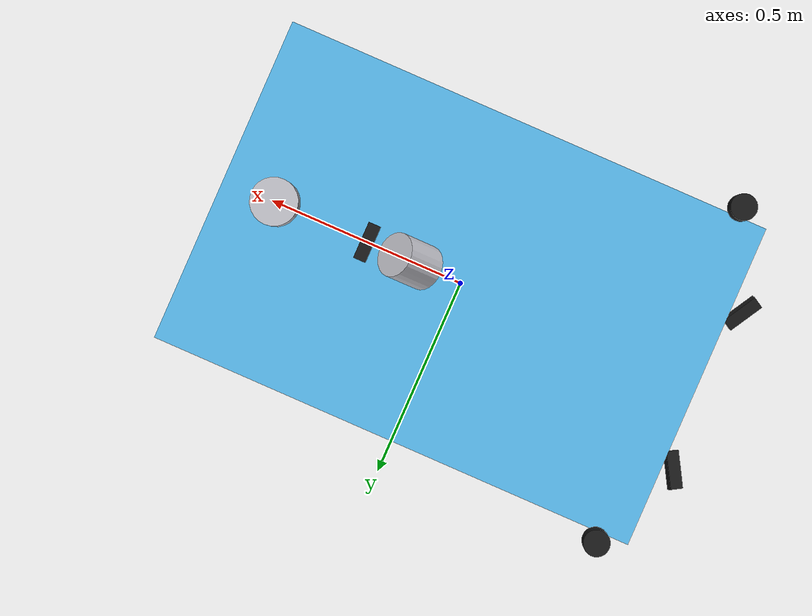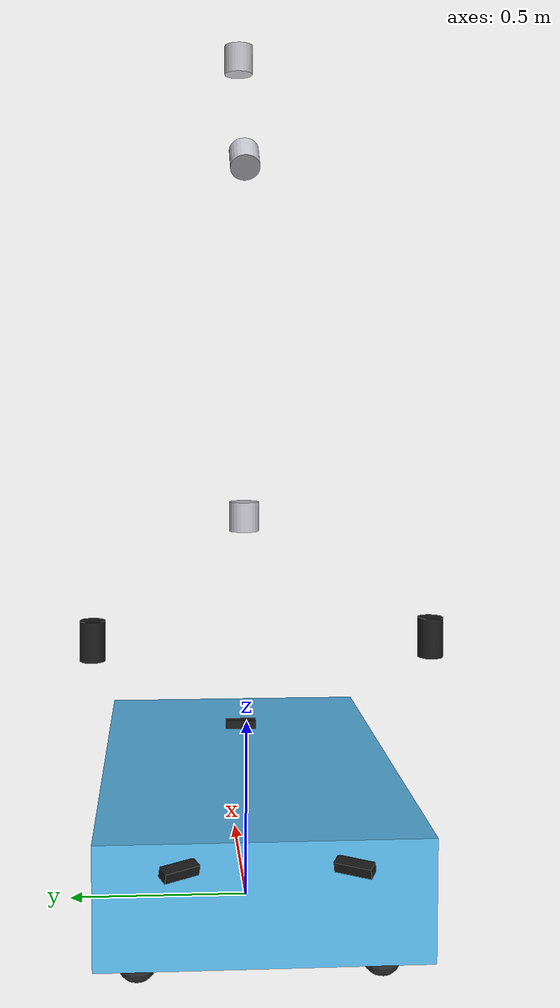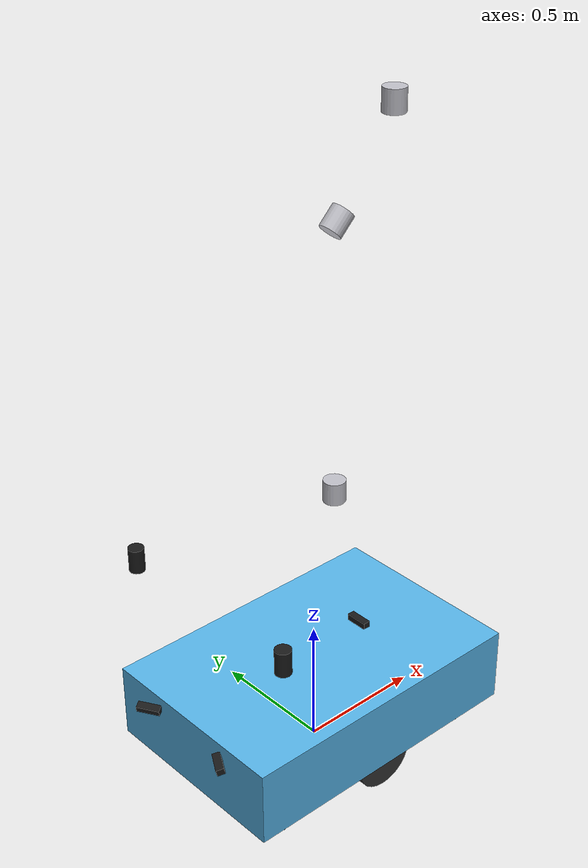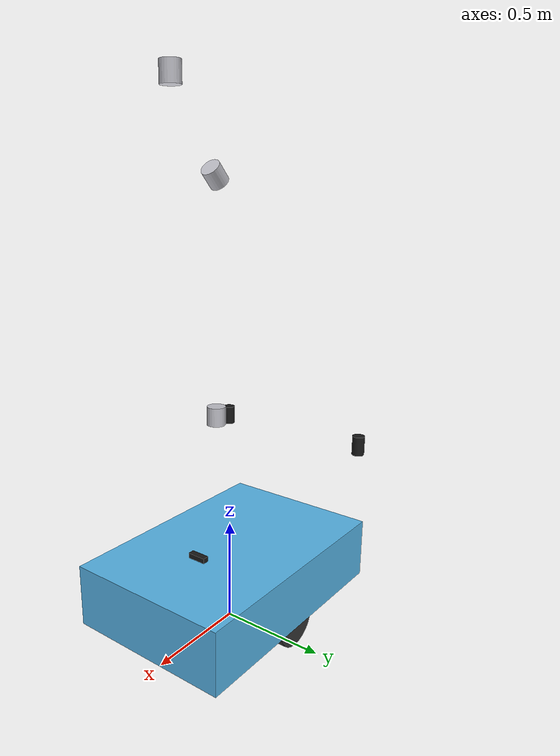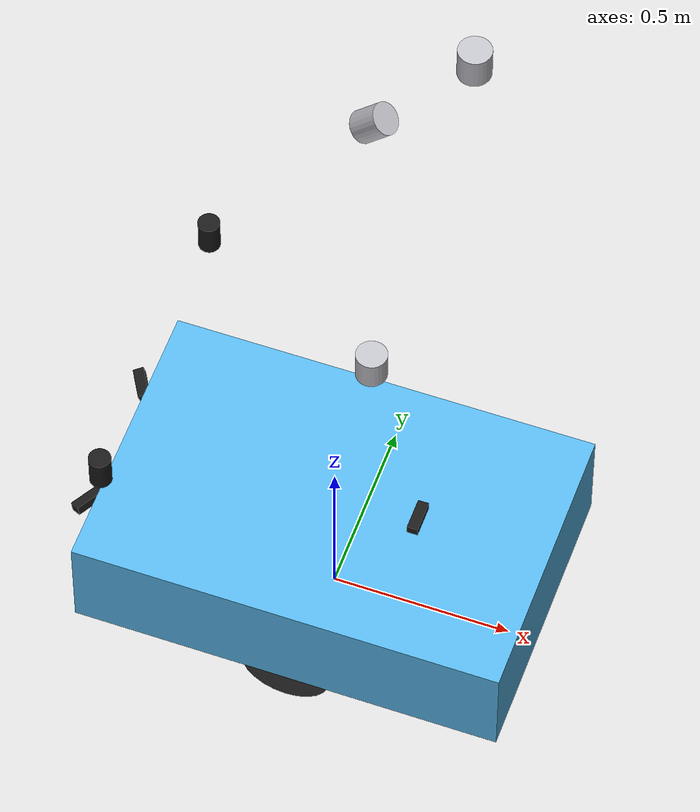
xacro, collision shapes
<?xml version="1.0"?>
<robot xmlns:xacro="http://www.ros.org/wiki/xacro" name="benchmark_robot">

  <!-- Properties -->
  <xacro:property name="chassis_length" value="1.2"/>
  <xacro:property name="chassis_width" value="0.8"/>
  <xacro:property name="chassis_height" value="0.3"/>
  <xacro:property name="chassis_mass" value="200.0"/>
  <xacro:property name="chassis_z_offset" value="0.25"/>

  <xacro:property name="wheel_radius" value="0.125"/>
  <xacro:property name="wheel_width" value="0.06"/>
  <xacro:property name="wheel_mass" value="5.0"/>
  <xacro:property name="wheel_separation" value="0.72"/>

  <xacro:property name="caster_radius" value="0.05"/>
  <xacro:property name="caster_mass" value="0.5"/>

  <!-- Colors -->
  <material name="nav2_blue">
    <color rgba="0.28 0.66 0.85 1.0"/>
  </material>
  <material name="nav2_grey">
    <color rgba="0.6 0.62 0.65 1.0"/>
  </material>
  <material name="dark_grey">
    <color rgba="0.2 0.2 0.2 1.0"/>
  </material>
  <material name="black">
    <color rgba="0.1 0.1 0.1 1.0"/>
  </material>
  <material name="silver">
    <color rgba="0.75 0.75 0.78 1.0"/>
  </material>

  <!-- Inertia macros -->
  <xacro:macro name="box_inertia" params="m x y z">
    <inertial>
      <mass value="${m}"/>
      <inertia ixx="${m*(y*y+z*z)/12.0}" ixy="0" ixz="0"
               iyy="${m*(x*x+z*z)/12.0}" iyz="0"
               izz="${m*(x*x+y*y)/12.0}"/>
    </inertial>
  </xacro:macro>

  <xacro:macro name="cylinder_inertia" params="m r h">
    <inertial>
      <mass value="${m}"/>
      <inertia ixx="${m*(3*r*r+h*h)/12.0}" ixy="0" ixz="0"
               iyy="${m*(3*r*r+h*h)/12.0}" iyz="0"
               izz="${m*r*r/2.0}"/>
    </inertial>
  </xacro:macro>

  <xacro:macro name="sphere_inertia" params="m r">
    <inertial>
      <mass value="${m}"/>
      <inertia ixx="${2*m*r*r/5.0}" ixy="0" ixz="0"
               iyy="${2*m*r*r/5.0}" iyz="0"
               izz="${2*m*r*r/5.0}"/>
    </inertial>
  </xacro:macro>

  <!-- ============ BASE ============ -->
  <link name="base_footprint"/>

  <link name="base_link">
    <visual>
      <origin xyz="0 0 -0.25" rpy="1.5708 0 -1.5708"/>
      <geometry>
        <mesh filename="package://opennav_benchmark_robot/meshes/Forklift_agv_01.obj"/>
      </geometry>
    </visual>
    <collision>
      <geometry>
        <box size="${chassis_length} ${chassis_width} ${chassis_height}"/>
      </geometry>
    </collision>
    <xacro:box_inertia m="${chassis_mass}" x="${chassis_length}" y="${chassis_width}" z="${chassis_height}"/>
  </link>

  <joint name="base_joint" type="fixed">
    <parent link="base_footprint"/>
    <child link="base_link"/>
    <origin xyz="0 0 ${chassis_z_offset}" rpy="0 0 0"/>
  </joint>

  <!-- ============ DRIVE WHEELS ============ -->
  <xacro:macro name="drive_wheel" params="side y_offset">
    <link name="wheel_${side}_link">
      <visual>
        <origin xyz="0 0 0" rpy="0 0 ${pi/2}"/>
        <geometry>
          <mesh filename="package://opennav_benchmark_robot/meshes/drive_wheel.dae" scale="0.002 0.001667 0.001667"/>
        </geometry>
        <material name="dark_grey"/>
      </visual>
      <collision>
        <origin xyz="0 0 0" rpy="${pi/2} 0 0"/>
        <geometry>
          <cylinder radius="${wheel_radius}" length="${wheel_width}"/>
        </geometry>
      </collision>
      <xacro:cylinder_inertia m="${wheel_mass}" r="${wheel_radius}" h="${wheel_width}"/>
    </link>
    <joint name="wheel_${side}_joint" type="continuous">
      <parent link="base_link"/>
      <child link="wheel_${side}_link"/>
      <origin xyz="0 ${y_offset} ${-chassis_z_offset + wheel_radius}" rpy="0 0 0"/>
      <axis xyz="0 1 0"/>
    </joint>
  </xacro:macro>

  <xacro:drive_wheel side="left" y_offset="${wheel_separation/2}"/>
  <xacro:drive_wheel side="right" y_offset="${-wheel_separation/2}"/>

  <!-- ============ CASTER WHEELS ============ -->
  <xacro:macro name="caster_wheel" params="name x y">
    <link name="caster_${name}_link">
      <visual>
        <geometry>
          <mesh filename="package://opennav_benchmark_robot/meshes/caster_wheel.dae" scale="0.001 0.001 0.001"/>
        </geometry>
        <material name="dark_grey"/>
      </visual>
      <collision>
        <geometry>
          <sphere radius="${caster_radius}"/>
        </geometry>
      </collision>
      <xacro:sphere_inertia m="${caster_mass}" r="${caster_radius}"/>
    </link>
    <joint name="caster_${name}_joint" type="fixed">
      <parent link="base_link"/>
      <child link="caster_${name}_link"/>
      <origin xyz="${x} ${y} ${-chassis_z_offset + caster_radius}" rpy="0 0 ${pi/2}"/>
    </joint>
  </xacro:macro>

  <xacro:caster_wheel name="rear_left" x="0.45" y="0.30"/>
  <xacro:caster_wheel name="rear_right" x="0.45" y="-0.30"/>
  <xacro:caster_wheel name="front_left" x="-0.45" y="0.30"/>
  <xacro:caster_wheel name="front_right" x="-0.45" y="-0.30"/>

  <!-- ============ IMU ============ -->
  <link name="imu_link">
    <inertial>
      <mass value="0.1"/>
      <inertia ixx="0.00001" ixy="0" ixz="0" iyy="0.00001" iyz="0" izz="0.00001"/>
    </inertial>
  </link>
  <joint name="imu_joint" type="fixed">
    <parent link="base_link"/>
    <child link="imu_link"/>
    <origin xyz="0 0 -0.05" rpy="0 0 0"/>
  </joint>

  <!-- ============ 3D LIDARS ============ -->
  <!-- Center: 360deg, 32ch -->
  <link name="lidar_3d_center_link">
    <visual>
      <geometry>
        <mesh filename="package://opennav_benchmark_robot/meshes/ouster_os1.stl"/>
      </geometry>
      <material name="silver"/>
    </visual>
    <collision>
      <geometry><cylinder radius="0.0425" length="0.085"/></geometry>
    </collision>
    <inertial>
      <mass value="0.5"/>
      <inertia ixx="0.0003" ixy="0" ixz="0" iyy="0.0003" iyz="0" izz="0.0002"/>
    </inertial>
  </link>
  <joint name="lidar_3d_center_joint" type="fixed">
    <parent link="base_link"/>
    <child link="lidar_3d_center_link"/>
    <origin xyz="0.10 0 0.825" rpy="0 0 0"/>
  </joint>

  <!-- Top: on tower surface, in front of center lidar -->
  <link name="lidar_3d_top_link">
    <visual>
      <geometry>
        <mesh filename="package://opennav_benchmark_robot/meshes/ouster_os1.stl"/>
      </geometry>
      <material name="silver"/>
    </visual>
    <collision>
      <geometry><cylinder radius="0.0425" length="0.085"/></geometry>
    </collision>
    <inertial>
      <mass value="0.5"/>
      <inertia ixx="0.0003" ixy="0" ixz="0" iyy="0.0003" iyz="0" izz="0.0002"/>
    </inertial>
  </link>
  <joint name="lidar_3d_top_joint" type="fixed">
    <parent link="base_link"/>
    <child link="lidar_3d_top_link"/>
    <origin xyz="0.35 0 2.195" rpy="0 0 0"/>
  </joint>

  <!-- Tilted: 16ch, pitched 270deg -->
  <link name="lidar_3d_tilted_link">
    <visual>
      <geometry>
        <mesh filename="package://opennav_benchmark_robot/meshes/ouster_os1.stl"/>
      </geometry>
      <material name="silver"/>
    </visual>
    <collision>
      <geometry><cylinder radius="0.0425" length="0.085"/></geometry>
    </collision>
    <inertial>
      <mass value="0.5"/>
      <inertia ixx="0.0003" ixy="0" ixz="0" iyy="0.0003" iyz="0" izz="0.0002"/>
    </inertial>
  </link>
  <joint name="lidar_3d_tilted_joint" type="fixed">
    <parent link="base_link"/>
    <child link="lidar_3d_tilted_link"/>
    <origin xyz="0.10 0 1.845" rpy="${pi/4} 0 ${pi/2}"/>
  </joint>

  <!-- ============ 2D LIDARS (SICK TiM781 on chassis corners) ============ -->
  <xacro:macro name="lidar_2d" params="name x y yaw">
    <link name="${name}_link">
      <visual>
        <geometry>
          <mesh filename="package://opennav_benchmark_robot/meshes/sick_tim.stl"/>
        </geometry>
        <material name="black"/>
      </visual>
      <collision>
        <geometry><cylinder radius="0.03" length="0.095"/></geometry>
      </collision>
      <inertial>
        <mass value="0.4"/>
        <inertia ixx="0.0001" ixy="0" ixz="0" iyy="0.0001" iyz="0" izz="0.00005"/>
      </inertial>
    </link>
    <joint name="${name}_joint" type="fixed">
      <parent link="base_link"/>
      <child link="${name}_link"/>
      <origin xyz="${x} ${y} ${chassis_height/2 + 0.45}" rpy="0 0 ${yaw}"/>
    </joint>
  </xacro:macro>

  <xacro:lidar_2d name="lidar_2d_front_left" x="-0.50" y="0.40" yaw="${3*pi/4}"/>
  <xacro:lidar_2d name="lidar_2d_front_right" x="-0.50" y="-0.40" yaw="${-3*pi/4}"/>

  <!-- ============ DEPTH CAMERAS (Orbbec Gemini 335) ============ -->
  <xacro:macro name="depth_camera" params="name x y z pitch yaw">
    <link name="${name}_link">
      <visual>
        <geometry>
          <mesh filename="package://opennav_benchmark_robot/meshes/gemini335_camera.STL"/>
        </geometry>
        <material name="black"/>
      </visual>
      <collision>
        <geometry><box size="0.03 0.09 0.025"/></geometry>
      </collision>
      <inertial>
        <mass value="0.1"/>
        <inertia ixx="0.00001" ixy="0" ixz="0" iyy="0.00001" iyz="0" izz="0.00001"/>
      </inertial>
    </link>
    <joint name="${name}_joint" type="fixed">
      <parent link="base_link"/>
      <child link="${name}_link"/>
      <origin xyz="${x} ${y} ${z}" rpy="0 ${pitch} ${yaw}"/>
    </joint>
    <link name="${name}_optical_frame"/>
    <joint name="${name}_optical_joint" type="fixed">
      <parent link="${name}_link"/>
      <child link="${name}_optical_frame"/>
      <origin xyz="0 0 0" rpy="${-pi/2} 0 ${-pi/2}"/>
    </joint>
  </xacro:macro>

  <xacro:depth_camera name="camera_rear" x="0.235" y="0" z="0.175" pitch="0" yaw="0"/>
  <xacro:depth_camera name="camera_front_left" x="-0.63" y="0.20" z="0.10" pitch="${pi/12}" yaw="${pi + 0.5245}"/>
  <xacro:depth_camera name="camera_front_right" x="-0.63" y="-0.20" z="0.10" pitch="${pi/12}" yaw="${pi - 0.5245}"/>

</robot>
